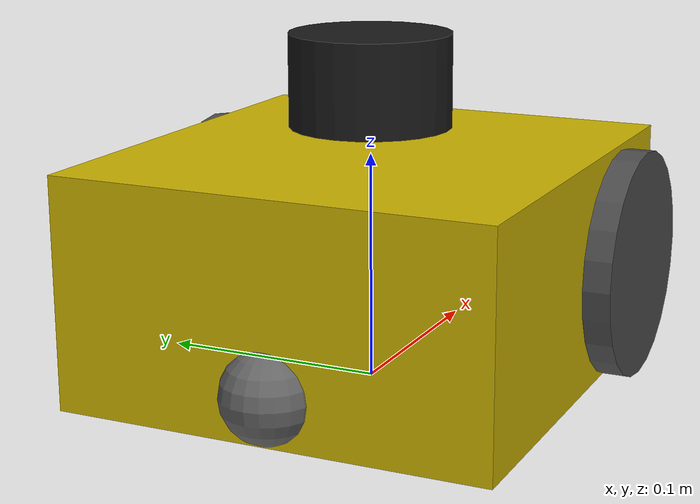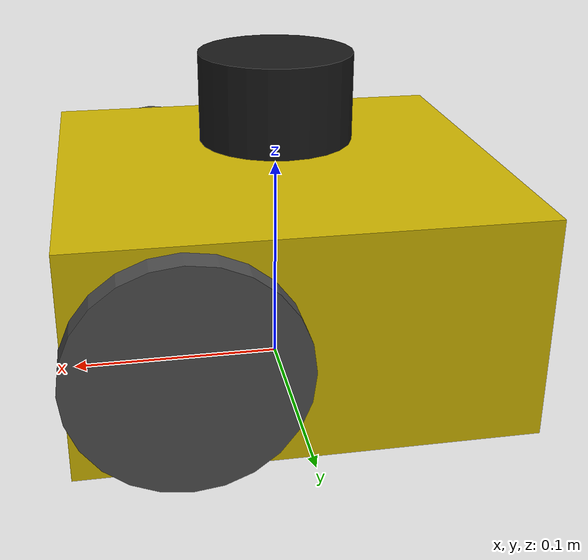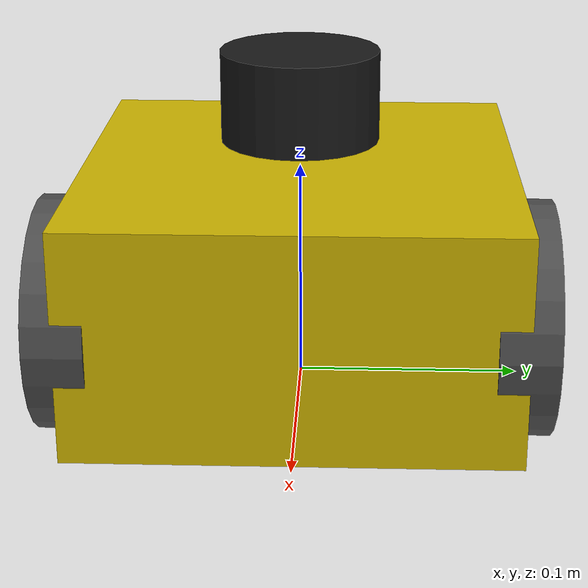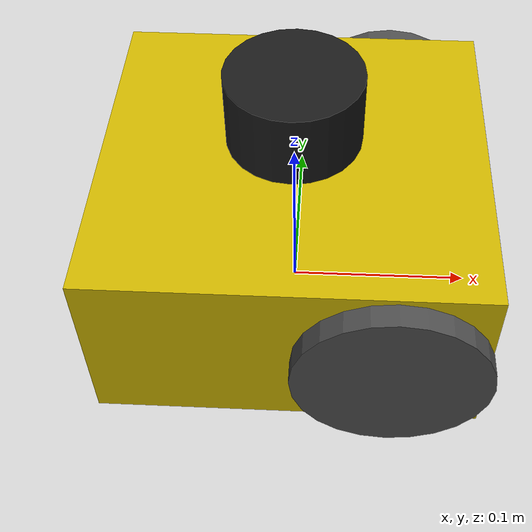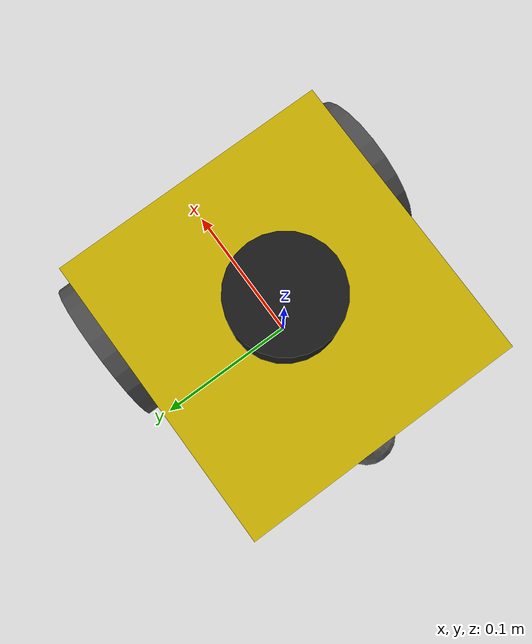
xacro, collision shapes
<?xml version="1.0"?>
<robot name="puzzlebot" xmlns:xacro="http://www.ros.org/wiki/xacro">

  <xacro:property name="mesh_scale"      value="1.0"/>

  <xacro:property name="base_mass"       value="0.5"/>
  <xacro:property name="wheel_mass"      value="0.05"/>
  <xacro:property name="caster_mass"     value="0.02"/>
  <xacro:property name="lidar_mass"      value="0.17"/>

  <xacro:property name="base_length"     value="0.20"/>    <!-- 20 cm -->
  <xacro:property name="base_width"      value="0.191"/>   <!-- 19.1 cm -->
  <xacro:property name="base_height"     value="0.10"/>

  <xacro:property name="wheel_radius"    value="0.05"/>
  <xacro:property name="wheel_width"     value="0.025"/>
  <xacro:property name="wheel_separation" value="0.19"/>

  <xacro:property name="caster_radius"   value="0.02"/>

  <xacro:property name="lidar_radius"    value="0.035"/>
  <xacro:property name="lidar_height"    value="0.04"/>

  <!-- ============================================================
       INCLUDES — modulos del robot
       ============================================================ -->
  <xacro:include filename="$(find puzzlebot_description)/urdf/inertias.xacro"/>
  <xacro:include filename="$(find puzzlebot_description)/urdf/base.xacro"/>
  <xacro:include filename="$(find puzzlebot_description)/urdf/wheels.xacro"/>
  <xacro:include filename="$(find puzzlebot_description)/urdf/sensors.xacro"/>
  <xacro:include filename="$(find puzzlebot_description)/urdf/gazebo_plugins.xacro"/>

</robot>

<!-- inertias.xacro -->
<robot xmlns:xacro="http://www.ros.org/wiki/xacro">

  <xacro:macro name="box_inertia" params="m l w h">
    <inertial>
      <mass value="${m}"/>
      <inertia
        ixx="${m/12.0*(w*w+h*h)}" ixy="0" ixz="0"
        iyy="${m/12.0*(l*l+h*h)}" iyz="0"
        izz="${m/12.0*(l*l+w*w)}"/>
    </inertial>
  </xacro:macro>

  <xacro:macro name="cylinder_inertia" params="m r h">
    <inertial>
      <mass value="${m}"/>
      <inertia
        ixx="${m/12.0*(3*r*r+h*h)}" ixy="0" ixz="0"
        iyy="${m/12.0*(3*r*r+h*h)}" iyz="0"
        izz="${m/2.0*r*r}"/>
    </inertial>
  </xacro:macro>

  <xacro:macro name="sphere_inertia" params="m r">
    <inertial>
      <mass value="${m}"/>
      <inertia
        ixx="${2.0/5.0*m*r*r}" ixy="0" ixz="0"
        iyy="${2.0/5.0*m*r*r}" iyz="0"
        izz="${2.0/5.0*m*r*r}"/>
    </inertial>
  </xacro:macro>

</robot>

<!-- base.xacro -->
<robot xmlns:xacro="http://www.ros.org/wiki/xacro">

  <link name="base_footprint"/>

  <link name="base_link">
    <visual>
      <origin xyz="0 0 0" rpy="0 0 0"/>
      <geometry>
        <mesh filename="package://puzzlebot_description/meshes/Puzzlebot_Jetson_Lidar_Edition_Base.stl" scale="${mesh_scale} ${mesh_scale} ${mesh_scale}"/>
      </geometry>
      <material name="yellow">
        <color rgba="0.8 0.7 0.0 1.0"/>
      </material>
    </visual>
    <collision>
      <origin xyz="0 0 0" rpy="0 0 0"/>
      <geometry>
        <box size="${base_length} ${base_width} ${base_height}"/>
      </geometry>
    </collision>
    <xacro:box_inertia m="${base_mass}" l="${base_length}" w="${base_width}" h="${base_height}"/>
  </link>

  <joint name="base_link_joint" type="fixed">
    <parent link="base_footprint"/>
    <child  link="base_link"/>
    <!-- 0.0525 = wheel_radius (0.05) + wheel offset (0.0025) -->
    <origin xyz="0 0 0.0525" rpy="0 0 0"/>
  </joint>

</robot>

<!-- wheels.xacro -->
<robot xmlns:xacro="http://www.ros.org/wiki/xacro">

  <xacro:macro name="wheel" params="name y_reflect">
    <link name="${name}_link">
      <visual>
        <origin xyz="0 0 0" rpy="1.5708 0 0"/>
        <geometry>
          <mesh filename="package://puzzlebot_description/meshes/Puzzlebot_Wheel.stl" scale="${mesh_scale} ${mesh_scale} ${mesh_scale}"/>
        </geometry>
        <material name="dark_grey">
          <color rgba="0.3 0.3 0.3 1.0"/>
        </material>
      </visual>
      <collision>
        <origin xyz="0 0 0" rpy="1.5708 0 0"/>
        <geometry>
          <cylinder radius="${wheel_radius}" length="${wheel_width}"/>
        </geometry>
      </collision>
      <xacro:cylinder_inertia m="${wheel_mass}" r="${wheel_radius}" h="${wheel_width}"/>
    </link>

    <joint name="${name}_joint" type="continuous">
      <parent link="base_link"/>
      <child  link="${name}_link"/>
      <origin xyz="0.052 ${y_reflect * wheel_separation/2.0} -0.0025" rpy="0 0 0"/>
      <axis xyz="0 1 0"/>
      <dynamics damping="0.01" friction="0.1"/>
    </joint>
  </xacro:macro>

  <xacro:wheel name="wheel_r" y_reflect="-1"/>
  <xacro:wheel name="wheel_l" y_reflect="1"/>

  <link name="caster_link">
    <visual>
      <origin xyz="0 0 0" rpy="0 0 0"/>
      <geometry>
        <mesh filename="package://puzzlebot_description/meshes/Puzzlebot_Caster_Wheel.stl" scale="${mesh_scale} ${mesh_scale} ${mesh_scale}"/>
      </geometry>
      <material name="grey">
        <color rgba="0.4 0.4 0.4 1.0"/>
      </material>
    </visual>
    <collision>
      <origin xyz="0 0 0" rpy="0 0 0"/>
      <geometry>
        <sphere radius="${caster_radius}"/>
      </geometry>
    </collision>
    <xacro:sphere_inertia m="${caster_mass}" r="${caster_radius}"/>
  </link>

  <joint name="caster_joint" type="fixed">
    <parent link="base_link"/>
    <child  link="caster_link"/>
    <origin xyz="-0.095 0.0 -0.03" rpy="0 0 0"/>
  </joint>

</robot>

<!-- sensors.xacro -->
<robot xmlns:xacro="http://www.ros.org/wiki/xacro">

  <link name="lidar_link">
    <visual>
      <origin xyz="0 0 0" rpy="0 0 0"/>
      <geometry>
        <cylinder radius="${lidar_radius}" length="${lidar_height}"/>
      </geometry>
      <material name="black">
        <color rgba="0.1 0.1 0.1 1.0"/>
      </material>
    </visual>
    <collision>
      <origin xyz="0 0 0" rpy="0 0 0"/>
      <geometry>
        <cylinder radius="${lidar_radius}" length="${lidar_height}"/>
      </geometry>
    </collision>
    <xacro:cylinder_inertia m="${lidar_mass}" r="${lidar_radius}" h="${lidar_height}"/>
  </link>

  <joint name="lidar_joint" type="fixed">
    <parent link="base_link"/>
    <child  link="lidar_link"/>
    <origin xyz="0.0 0.0 0.08" rpy="0 0 0"/>
  </joint>

</robot>
